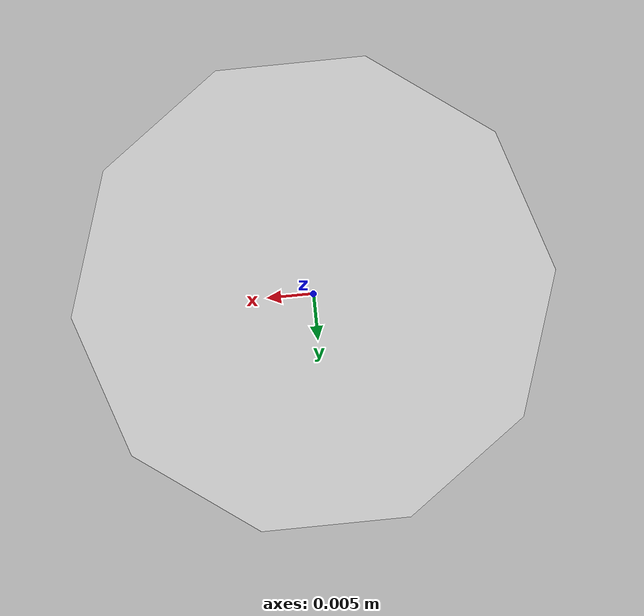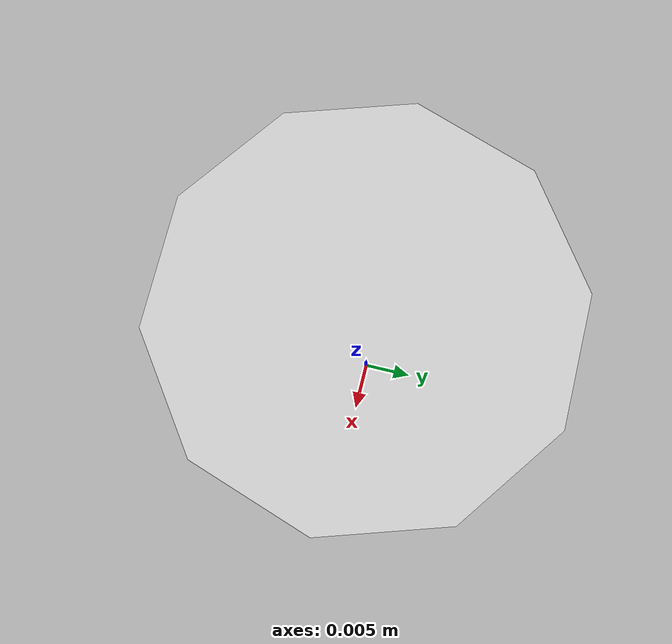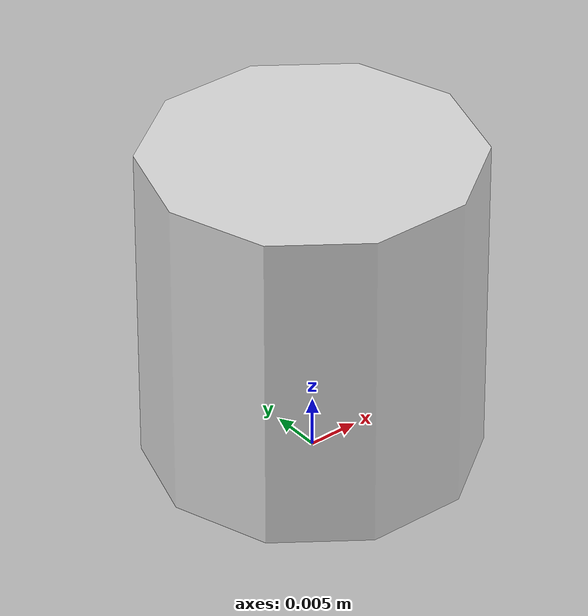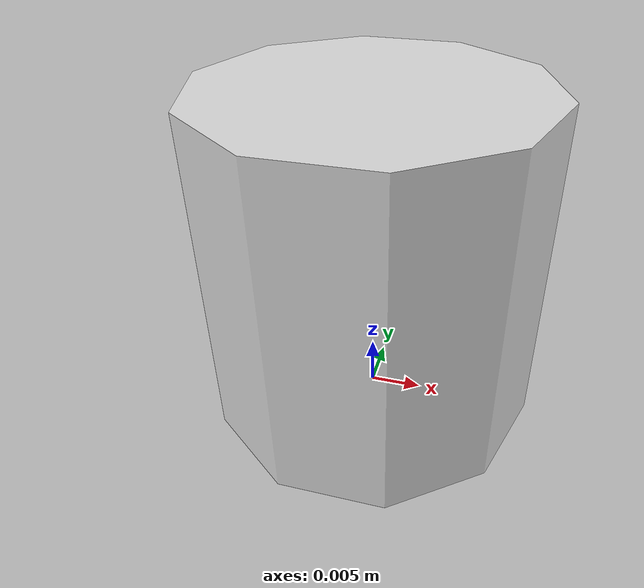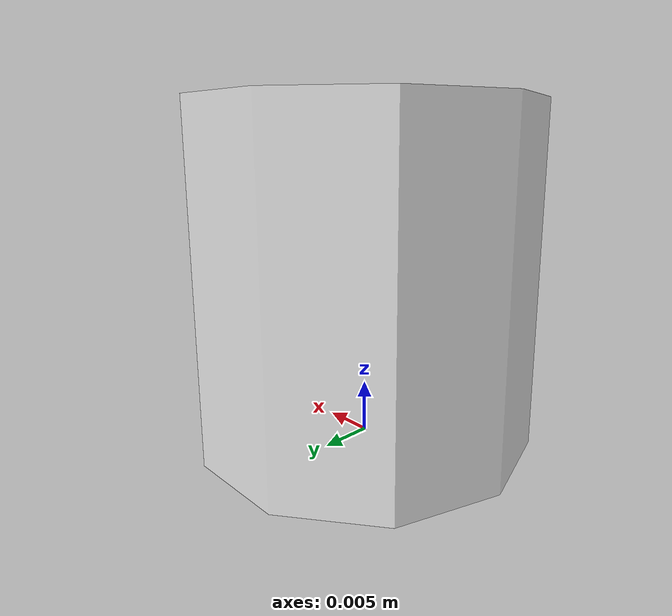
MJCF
<mujoco model="white_dec_cylinder">
  <compiler angle="radian" meshdir="assets" autolimits="true" />
  <option cone="elliptic" impratio="10" />
  <default>
    <default class="white_dec_cylinder">
      <default class="visual">
        <geom group="2" contype="0" conaffinity="0" />
      </default>
      <default class="collision">
        <geom group="3" condim="4" margin="0.001" />
      </default>
    </default>
  </default>
  <asset>
    <mesh name="white_dec_cylinder" file="dec_cylinder.obj"   />
  </asset>
  <worldbody>
    <body name="white_dec_cylinder_body" childclass="white_dec_cylinder">
      <geom type="mesh" class="visual" name="white_dec_cylinder_visual_geom" mesh="white_dec_cylinder" rgba="0.85 0.85 0.85 1" />
      <geom type="mesh" class="collision" name="white_dec_cylinder_collision_geom" mesh="white_dec_cylinder" friction="1.2 1.5 0.8" density="20" solimp="0.90 0.95" solref="0.004 1" />
      <joint type="free" name="white_dec_cylinder_joint" />
    </body>
  </worldbody>
</mujoco>
